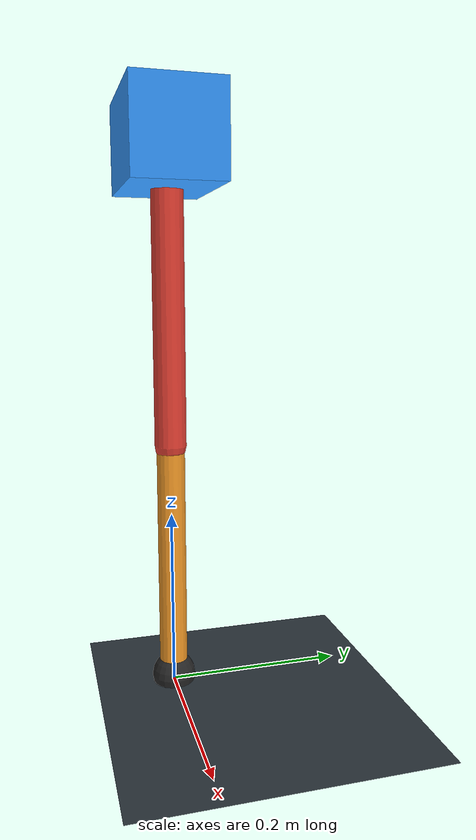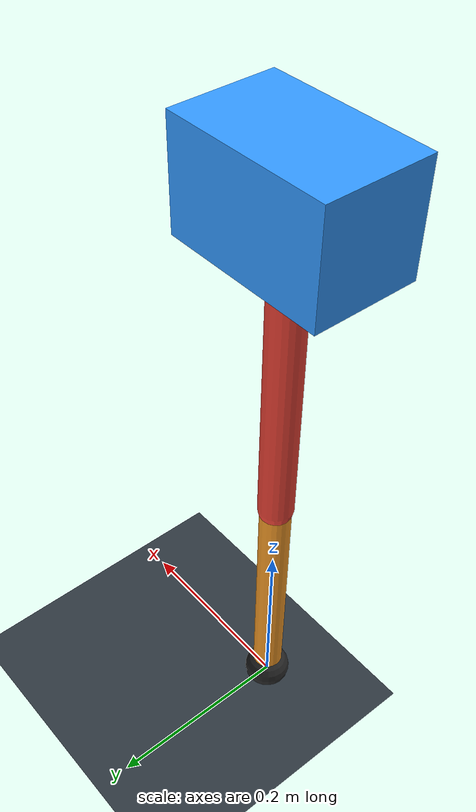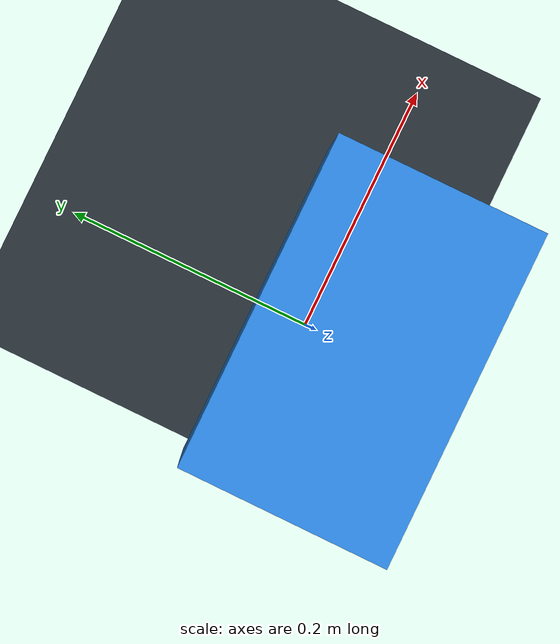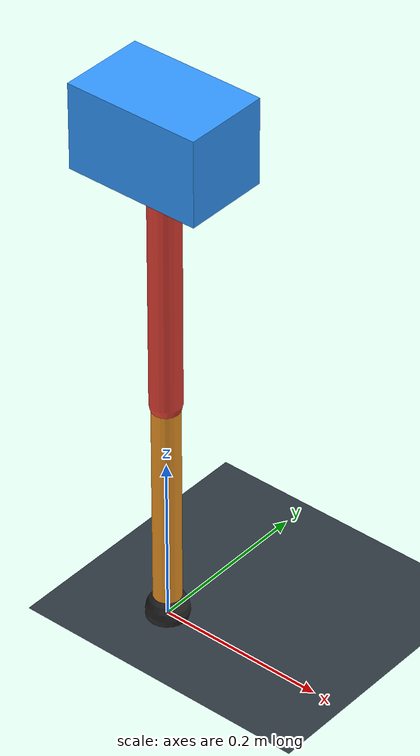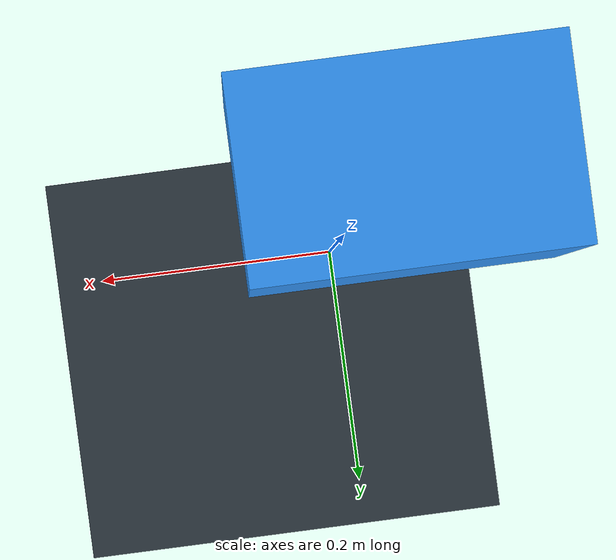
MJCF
<mujoco model="single_axis_two_bar">
  <compiler angle="radian" inertiafromgeom="true"/>
  <option timestep="0.001" integrator="implicitfast" gravity="0 0 -9.81"/>
  <default>
    <joint damping="0.08"/>
    <geom friction="1.2 0.01 0.0001" condim="3"/>
  </default>
  <worldbody>
    <geom name="floor" type="plane" size="5 5 0.1" rgba="0.18 0.22 0.25 1"/>
    <body name="carriage" pos="0 0 0.611562861299962">
      <joint name="pole_slide" type="slide" axis="0 0 1"/>
      <geom name="payload" type="box" size="0.08 0.05 0.05" mass="3.396054239947119" rgba="0.2 0.6 1 1"/>
      <body name="thigh" pos="0 0 0">
        <joint name="hip" type="hinge" axis="0 1 0"/>
        <geom name="thigh_link" type="capsule" fromto="0 0 0 0 0 -0.3309985373765145" size="0.018" mass="0.23584083164054834" rgba="0.9 0.25 0.2 1"/>
        <body name="shank" pos="0 0 -0.3309985373765145">
          <joint name="knee" type="hinge" axis="0 1 0"/>
          <geom name="shank_link" type="capsule" fromto="0 0 0 0 0 -0.2737054433450957" size="0.016" mass="0.19501874508171915" rgba="0.95 0.6 0.15 1"/>
          <geom name="foot" type="sphere" pos="0 0 -0.2737054433450957" size="0.025" mass="0.03" rgba="0.15 0.15 0.15 1"/>
          <site name="toe" pos="0 0 -0.2737054433450957" size="0.008"/>
        </body>
      </body>
    </body>
  </worldbody>
  <actuator>
    <motor name="hip_motor" joint="hip" ctrlrange="-31.02139892300265 31.02139892300265"/>
    <motor name="knee_motor" joint="knee" ctrlrange="-166.62979826120053 166.62979826120053"/>
  </actuator>
</mujoco>
